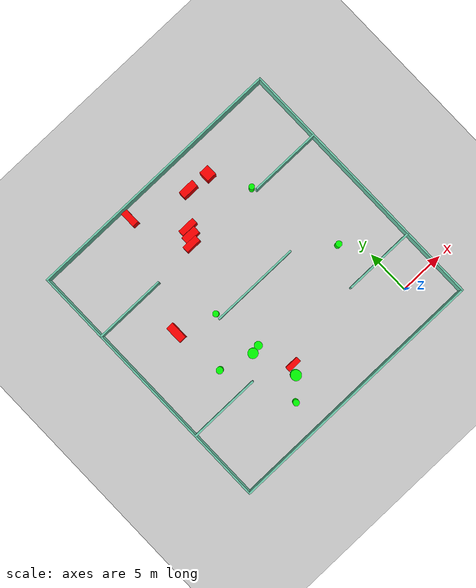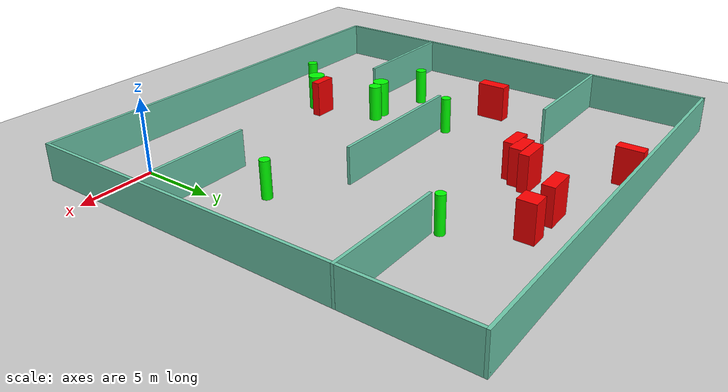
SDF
<sdf version="1.7">
 <world name="default">
  <light name="sun" type="directional">
   <pose>0 0 10 0 -0 0</pose>
   <diffuse>0.8 0.8 0.8 1</diffuse>
   <specular>0.2 0.2 0.2 1</specular>
   <attenuation>
    <range>1000</range>
    <constant>0.9</constant>
    <linear>0.01</linear>
    <quadratic>0.001</quadratic>
   </attenuation>
   <direction>-0.5 0.1 -0.9</direction>
   <spot><inner_angle>0</inner_angle><outer_angle>0</outer_angle><falloff>0</falloff></spot>
  </light>
  <model name="ground_plane">
   <static>1</static>
   <link name="link">
    <collision name="collision">
     <geometry><plane><normal>0 0 1</normal><size>100 100</size></plane></geometry>
     <surface>
      <contact><collide_bitmask>65535</collide_bitmask></contact>
      <friction><ode><mu>100</mu><mu2>50</mu2></ode></friction>
     </surface>
    </collision>
    <visual name="visual">
     <cast_shadows>0</cast_shadows>
     <geometry><plane><normal>0 0 1</normal><size>100 100</size></plane></geometry>
     <material>
      <script><uri>file://media/materials/scripts/gazebo.material</uri><name>Gazebo/Grey</name></script>
     </material>
    </visual>
   </link>
  </model>
  <gravity>0 0 -9.8</gravity>
  <magnetic_field>6e-06 2.3e-05 -4.2e-05</magnetic_field>
  <atmosphere type="adiabatic"/>
  <physics type="ode">
   <max_step_size>0.001</max_step_size>
   <real_time_factor>1</real_time_factor>
   <real_time_update_rate>1000</real_time_update_rate>
  </physics>
  <scene><ambient>0.4 0.4 0.4 1</ambient><background>0.7 0.7 0.7 1</background><shadows>1</shadows></scene>
  <spherical_coordinates>
   <surface_model>EARTH_WGS84</surface_model>
   <latitude_deg>0</latitude_deg>
   <longitude_deg>0</longitude_deg>
   <elevation>0</elevation>
   <heading_deg>0</heading_deg>
  </spherical_coordinates>
  <model name="my_base_walls">
   <link name="Wall_10">
    <collision name="Wall_10_Collision">
     <geometry><box><size>8.2 0.2 2.5</size></box></geometry>
     <pose>0 0 1.25 0 -0 0</pose>
    </collision>
    <visual name="Wall_10_Visual">
     <pose>0 0 1.25 0 -0 0</pose>
     <geometry><box><size>8.2 0.2 2.5</size></box></geometry>
     <material>
      <script><uri>file://media/materials/scripts/gazebo.material</uri><name>Gazebo/Grey</name></script>
      <ambient>0.435294 0.796078 0.67451 1</ambient>
     </material>
     <meta><layer>0</layer></meta>
    </visual>
    <pose>-11 -7 0 0 -0 0</pose>
   </link>
   <link name="Wall_12">
    <collision name="Wall_12_Collision">
     <geometry><box><size>8.2 0.2 2.5</size></box></geometry>
     <pose>0 0 1.25 0 -0 0</pose>
    </collision>
    <visual name="Wall_12_Visual">
     <pose>0 0 1.25 0 -0 0</pose>
     <geometry><box><size>8.2 0.2 2.5</size></box></geometry>
     <material>
      <script><uri>file://media/materials/scripts/gazebo.material</uri><name>Gazebo/Grey</name></script>
      <ambient>0.435294 0.796078 0.67451 1</ambient>
     </material>
     <meta><layer>0</layer></meta>
    </visual>
    <pose>-11 7 0 0 -0 0</pose>
   </link>
   <link name="Wall_14">
    <collision name="Wall_14_Collision">
     <geometry><box><size>8.2 0.2 2.5</size></box></geometry>
     <pose>0 0 1.25 0 -0 0</pose>
    </collision>
    <visual name="Wall_14_Visual">
     <pose>0 0 1.25 0 -0 0</pose>
     <geometry><box><size>8.2 0.2 2.5</size></box></geometry>
     <material>
      <script><uri>file://media/materials/scripts/gazebo.material</uri><name>Gazebo/Grey</name></script>
      <ambient>0.435294 0.796078 0.67451 1</ambient>
     </material>
     <meta><layer>0</layer></meta>
    </visual>
    <pose>11 7 0 0 -0 3.14159</pose>
   </link>
   <link name="Wall_16">
    <collision name="Wall_16_Collision">
     <geometry><box><size>10.2 0.2 2.5</size></box></geometry>
     <pose>0 0 1.25 0 -0 0</pose>
    </collision>
    <visual name="Wall_16_Visual">
     <pose>0 0 1.25 0 -0 0</pose>
     <geometry><box><size>10.2 0.2 2.5</size></box></geometry>
     <material>
      <script><uri>file://media/materials/scripts/gazebo.material</uri><name>Gazebo/Grey</name></script>
      <ambient>0.435294 0.796078 0.67451 1</ambient>
     </material>
     <meta><layer>0</layer></meta>
    </visual>
    <pose>0 0 0 0 -0 3.14159</pose>
   </link>
   <link name="Wall_2">
    <collision name="Wall_2_Collision">
     <geometry><box><size>30.2 0.2 2.5</size></box></geometry>
     <pose>0 0 1.25 0 -0 0</pose>
    </collision>
    <visual name="Wall_2_Visual">
     <pose>0 0 1.25 0 -0 0</pose>
     <geometry><box><size>30.2 0.2 2.5</size></box></geometry>
     <material>
      <script><uri>file://media/materials/scripts/gazebo.material</uri><name>Gazebo/Grey</name></script>
      <ambient>0.435294 0.796078 0.67451 1</ambient>
     </material>
     <meta><layer>0</layer></meta>
    </visual>
    <pose>0 -15 0 0 -0 3.14159</pose>
   </link>
   <link name="Wall_3">
    <collision name="Wall_3_Collision">
     <geometry><box><size>30.2 0.2 2.5</size></box></geometry>
     <pose>0 0 1.25 0 -0 0</pose>
    </collision>
    <visual name="Wall_3_Visual">
     <pose>0 0 1.25 0 -0 0</pose>
     <geometry><box><size>30.2 0.2 2.5</size></box></geometry>
     <material>
      <script><uri>file://media/materials/scripts/gazebo.material</uri><name>Gazebo/Grey</name></script>
      <ambient>0.435294 0.796078 0.67451 1</ambient>
     </material>
     <meta><layer>0</layer></meta>
    </visual>
    <pose>-15 0 0 0 -0 1.5708</pose>
   </link>
   <link name="Wall_4">
    <collision name="Wall_4_Collision">
     <geometry><box><size>30.2 0.2 2.5</size></box></geometry>
     <pose>0 0 1.25 0 -0 0</pose>
    </collision>
    <visual name="Wall_4_Visual">
     <pose>0 0 1.25 0 -0 0</pose>
     <geometry><box><size>30.2 0.2 2.5</size></box></geometry>
     <material>
      <script><uri>file://media/materials/scripts/gazebo.material</uri><name>Gazebo/Grey</name></script>
      <ambient>0.435294 0.796078 0.67451 1</ambient>
     </material>
     <meta><layer>0</layer></meta>
    </visual>
    <pose>0 15 0 0 -0 0</pose>
   </link>
   <link name="Wall_6">
    <collision name="Wall_6_Collision">
     <geometry><box><size>30.2 0.2 2.5</size></box></geometry>
     <pose>0 0 1.25 0 -0 0</pose>
    </collision>
    <visual name="Wall_6_Visual">
     <pose>0 0 1.25 0 -0 0</pose>
     <geometry><box><size>30.2 0.2 2.5</size></box></geometry>
     <material>
      <script><uri>file://media/materials/scripts/gazebo.material</uri><name>Gazebo/Grey</name></script>
      <ambient>0.435294 0.796078 0.67451 1</ambient>
     </material>
     <meta><layer>0</layer></meta>
    </visual>
    <pose>15 0 0 0 -0 1.5708</pose>
   </link>
   <link name="Wall_8">
    <collision name="Wall_8_Collision">
     <geometry><box><size>8.2 0.2 2.5</size></box></geometry>
     <pose>0 0 1.25 0 -0 0</pose>
    </collision>
    <visual name="Wall_8_Visual">
     <pose>0 0 1.25 0 -0 0</pose>
     <geometry><box><size>8.2 0.2 2.5</size></box></geometry>
     <material>
      <script><uri>file://media/materials/scripts/gazebo.material</uri><name>Gazebo/Grey</name></script>
      <ambient>0.435294 0.796078 0.67451 1</ambient>
     </material>
     <meta><layer>0</layer></meta>
    </visual>
    <pose>11 -7 0 0 -0 3.14159</pose>
   </link>
   <static>1</static>
   <pose>-11 11 0 0 -0 0</pose>
  </model>
  <model name="cylinder1">
   <static>1</static>
   <link name="link">
    <inertial>
     <mass>1</mass>
     <inertia><ixx>0.5</ixx><ixy>0</ixy><ixz>0</ixz><iyy>0.5</iyy><iyz>0</iyz><izz>1</izz></inertia>
    </inertial>
    <collision name="collision">
     <geometry><cylinder><radius>0.3397116907301123</radius><length>2.5</length></cylinder></geometry>
    </collision>
    <visual name="visual">
     <geometry><cylinder><radius>0.3397116907301123</radius><length>2.5</length></cylinder></geometry>
     <material>
      <ambient>0 1 0 1</ambient>
      <diffuse>0 1 0 1</diffuse>
      <specular>0.1 0.1 0.1 1</specular>
      <emissive>0 0 0 0</emissive>
     </material>
    </visual>
   </link>
   <pose>-1.8748617431936765 8.105519158718351 1.25 0 0 0</pose>
  </model>
  <model name="cylinder2">
   <static>1</static>
   <link name="link">
    <inertial>
     <mass>1</mass>
     <inertia><ixx>0.5</ixx><ixy>0</ixy><ixz>0</ixz><iyy>0.5</iyy><iyz>0</iyz><izz>1</izz></inertia>
    </inertial>
    <collision name="collision">
     <geometry><cylinder><radius>0.37778992971654735</radius><length>2.5</length></cylinder></geometry>
    </collision>
    <visual name="visual">
     <geometry><cylinder><radius>0.37778992971654735</radius><length>2.5</length></cylinder></geometry>
     <material>
      <ambient>0 1 0 1</ambient>
      <diffuse>0 1 0 1</diffuse>
      <specular>0.1 0.1 0.1 1</specular>
      <emissive>0 0 0 0</emissive>
     </material>
    </visual>
   </link>
   <pose>-19.600255146000215 7.153995744462248 1.25 0 0 0</pose>
  </model>
  <model name="cylinder3">
   <static>1</static>
   <link name="link">
    <inertial>
     <mass>1</mass>
     <inertia><ixx>0.5</ixx><ixy>0</ixy><ixz>0</ixz><iyy>0.5</iyy><iyz>0</iyz><izz>1</izz></inertia>
    </inertial>
    <collision name="collision">
     <geometry><cylinder><radius>0.5802337171302918</radius><length>2.5</length></cylinder></geometry>
    </collision>
    <visual name="visual">
     <geometry><cylinder><radius>0.5802337171302918</radius><length>2.5</length></cylinder></geometry>
     <material>
      <ambient>0 1 0 1</ambient>
      <diffuse>0 1 0 1</diffuse>
      <specular>0.1 0.1 0.1 1</specular>
      <emissive>0 0 0 0</emissive>
     </material>
    </visual>
   </link>
   <pose>-14.305955641765877 1.4197696957902437 1.25 0 0 0</pose>
  </model>
  <model name="cylinder4">
   <static>1</static>
   <link name="link">
    <inertial>
     <mass>1</mass>
     <inertia><ixx>0.5</ixx><ixy>0</ixy><ixz>0</ixz><iyy>0.5</iyy><iyz>0</iyz><izz>1</izz></inertia>
    </inertial>
    <collision name="collision">
     <geometry><cylinder><radius>0.3474814038568903</radius><length>2.5</length></cylinder></geometry>
    </collision>
    <visual name="visual">
     <geometry><cylinder><radius>0.3474814038568903</radius><length>2.5</length></cylinder></geometry>
     <material>
      <ambient>0 1 0 1</ambient>
      <diffuse>0 1 0 1</diffuse>
      <specular>0.1 0.1 0.1 1</specular>
      <emissive>0 0 0 0</emissive>
     </material>
    </visual>
   </link>
   <pose>-16.225794373226744 -0.6071169532477962 1.25 0 0 0</pose>
  </model>
  <model name="cylinder5">
   <static>1</static>
   <link name="link">
    <inertial>
     <mass>1</mass>
     <inertia><ixx>0.5</ixx><ixy>0</ixy><ixz>0</ixz><iyy>0.5</iyy><iyz>0</iyz><izz>1</izz></inertia>
    </inertial>
    <collision name="collision">
     <geometry><cylinder><radius>0.5575975828323911</radius><length>2.5</length></cylinder></geometry>
    </collision>
    <visual name="visual">
     <geometry><cylinder><radius>0.5575975828323911</radius><length>2.5</length></cylinder></geometry>
     <material>
      <ambient>0 1 0 1</ambient>
      <diffuse>0 1 0 1</diffuse>
      <specular>0.1 0.1 0.1 1</specular>
      <emissive>0 0 0 0</emissive>
     </material>
    </visual>
   </link>
   <pose>-15.946992791642383 6.067356180925376 1.25 0 0 0</pose>
  </model>
  <model name="cylinder6">
   <static>1</static>
   <link name="link">
    <inertial>
     <mass>1</mass>
     <inertia><ixx>0.5</ixx><ixy>0</ixy><ixz>0</ixz><iyy>0.5</iyy><iyz>0</iyz><izz>1</izz></inertia>
    </inertial>
    <collision name="collision">
     <geometry><cylinder><radius>0.3119437830804703</radius><length>2.5</length></cylinder></geometry>
    </collision>
    <visual name="visual">
     <geometry><cylinder><radius>0.3119437830804703</radius><length>2.5</length></cylinder></geometry>
     <material>
      <ambient>0 1 0 1</ambient>
      <diffuse>0 1 0 1</diffuse>
      <specular>0.1 0.1 0.1 1</specular>
      <emissive>0 0 0 0</emissive>
     </material>
    </visual>
   </link>
   <pose>-4.280914830149774 18.50286511956796 1.25 0 0 0</pose>
  </model>
  <model name="cylinder7">
   <static>1</static>
   <link name="link">
    <inertial>
     <mass>1</mass>
     <inertia><ixx>0.5</ixx><ixy>0</ixy><ixz>0</ixz><iyy>0.5</iyy><iyz>0</iyz><izz>1</izz></inertia>
    </inertial>
    <collision name="collision">
     <geometry><cylinder><radius>0.4370396386444199</radius><length>2.5</length></cylinder></geometry>
    </collision>
    <visual name="visual">
     <geometry><cylinder><radius>0.4370396386444199</radius><length>2.5</length></cylinder></geometry>
     <material>
      <ambient>0 1 0 1</ambient>
      <diffuse>0 1 0 1</diffuse>
      <specular>0.1 0.1 0.1 1</specular>
      <emissive>0 0 0 0</emissive>
     </material>
    </visual>
   </link>
   <pose>-14.995621003717936 6.275036851747817 1.25 0 0 0</pose>
  </model>
  <model name="cylinder8">
   <static>1</static>
   <link name="link">
    <inertial>
     <mass>1</mass>
     <inertia><ixx>0.5</ixx><ixy>0</ixy><ixz>0</ixz><iyy>0.5</iyy><iyz>0</iyz><izz>1</izz></inertia>
    </inertial>
    <collision name="collision">
     <geometry><cylinder><radius>0.3297206653874913</radius><length>2.5</length></cylinder></geometry>
    </collision>
    <visual name="visual">
     <geometry><cylinder><radius>0.3297206653874913</radius><length>2.5</length></cylinder></geometry>
     <material>
      <ambient>0 1 0 1</ambient>
      <diffuse>0 1 0 1</diffuse>
      <specular>0.1 0.1 0.1 1</specular>
      <emissive>0 0 0 0</emissive>
     </material>
    </visual>
   </link>
   <pose>-15.921515039790748 11.618728193821116 1.25 0 0 0</pose>
  </model>
  <model name="box1">
   <static>1</static>
   <link name="link">
    <inertial>
     <mass>1</mass>
     <inertia><ixx>0.083</ixx><ixy>0</ixy><ixz>0</ixz><iyy>0.083</iyy><iyz>0</iyz><izz>0.083</izz></inertia>
    </inertial>
    <collision name="collision">
     <geometry><box><size>1.7957733374133906 0.7147343324379811 2.5</size></box></geometry>
    </collision>
    <visual name="visual">
     <geometry><box><size>1.7957733374133906 0.7147343324379811 2.5</size></box></geometry>
     <material>
      <ambient>1 0 0 1</ambient>
      <diffuse>1 0 0 1</diffuse>
      <specular>0.1 0.1 0.1 1</specular>
      <emissive>0 0 0 0</emissive>
     </material>
    </visual>
    <sensor name="my_contact" type="contact">
     <contact><collision>box_collision</collision><topic>__default_topic__</topic></contact>
    </sensor>
   </link>
   <pose>-12.794954685847687 18.51533595456912 1.25 0 0 0</pose>
  </model>
  <model name="box2">
   <static>1</static>
   <link name="link">
    <inertial>
     <mass>1</mass>
     <inertia><ixx>0.083</ixx><ixy>0</ixy><ixz>0</ixz><iyy>0.083</iyy><iyz>0</iyz><izz>0.083</izz></inertia>
    </inertial>
    <collision name="collision">
     <geometry><box><size>1.1306104432938553 1.2135040693147605 2.5</size></box></geometry>
    </collision>
    <visual name="visual">
     <geometry><box><size>1.1306104432938553 1.2135040693147605 2.5</size></box></geometry>
     <material>
      <ambient>1 0 0 1</ambient>
      <diffuse>1 0 0 1</diffuse>
      <specular>0.1 0.1 0.1 1</specular>
      <emissive>0 0 0 0</emissive>
     </material>
    </visual>
    <sensor name="my_contact" type="contact">
     <contact><collision>box_collision</collision><topic>__default_topic__</topic></contact>
    </sensor>
   </link>
   <pose>-6.599826591904948 22.61978024119901 1.25 0 0 0</pose>
  </model>
  <model name="box3">
   <static>1</static>
   <link name="link">
    <inertial>
     <mass>1</mass>
     <inertia><ixx>0.083</ixx><ixy>0</ixy><ixz>0</ixz><iyy>0.083</iyy><iyz>0</iyz><izz>0.083</izz></inertia>
    </inertial>
    <collision name="collision">
     <geometry><box><size>1.7440647707191121 0.8282929228219988 2.5</size></box></geometry>
    </collision>
    <visual name="visual">
     <geometry><box><size>1.7440647707191121 0.8282929228219988 2.5</size></box></geometry>
     <material>
      <ambient>1 0 0 1</ambient>
      <diffuse>1 0 0 1</diffuse>
      <specular>0.1 0.1 0.1 1</specular>
      <emissive>0 0 0 0</emissive>
     </material>
    </visual>
    <sensor name="my_contact" type="contact">
     <contact><collision>box_collision</collision><topic>__default_topic__</topic></contact>
    </sensor>
   </link>
   <pose>-12.237425684241593 19.231318569819415 1.25 0 0 0</pose>
  </model>
  <model name="box4">
   <static>1</static>
   <link name="link">
    <inertial>
     <mass>1</mass>
     <inertia><ixx>0.083</ixx><ixy>0</ixy><ixz>0</ixz><iyy>0.083</iyy><iyz>0</iyz><izz>0.083</izz></inertia>
    </inertial>
    <collision name="collision">
     <geometry><box><size>0.8516024386166423 1.987085362006588 2.5</size></box></geometry>
    </collision>
    <visual name="visual">
     <geometry><box><size>0.8516024386166423 1.987085362006588 2.5</size></box></geometry>
     <material>
      <ambient>1 0 0 1</ambient>
      <diffuse>1 0 0 1</diffuse>
      <specular>0.1 0.1 0.1 1</specular>
      <emissive>0 0 0 0</emissive>
     </material>
    </visual>
    <sensor name="my_contact" type="contact">
     <contact><collision>box_collision</collision><topic>__default_topic__</topic></contact>
    </sensor>
   </link>
   <pose>-20.176713444741218 13.007505629116864 1.25 0 0 0</pose>
  </model>
  <model name="box5">
   <static>1</static>
   <link name="link">
    <inertial>
     <mass>1</mass>
     <inertia><ixx>0.083</ixx><ixy>0</ixy><ixz>0</ixz><iyy>0.083</iyy><iyz>0</iyz><izz>0.083</izz></inertia>
    </inertial>
    <collision name="collision">
     <geometry><box><size>1.84923707950158 0.8182926130385011 2.5</size></box></geometry>
    </collision>
    <visual name="visual">
     <geometry><box><size>1.84923707950158 0.8182926130385011 2.5</size></box></geometry>
     <material>
      <ambient>1 0 0 1</ambient>
      <diffuse>1 0 0 1</diffuse>
      <specular>0.1 0.1 0.1 1</specular>
      <emissive>0 0 0 0</emissive>
     </material>
    </visual>
    <sensor name="my_contact" type="contact">
     <contact><collision>box_collision</collision><topic>__default_topic__</topic></contact>
    </sensor>
   </link>
   <pose>-9.157994981500039 22.80650570635398 1.25 0 0 0</pose>
  </model>
  <model name="box6">
   <static>1</static>
   <link name="link">
    <inertial>
     <mass>1</mass>
     <inertia><ixx>0.083</ixx><ixy>0</ixy><ixz>0</ixz><iyy>0.083</iyy><iyz>0</iyz><izz>0.083</izz></inertia>
    </inertial>
    <collision name="collision">
     <geometry><box><size>1.9458232082772304 0.6757772588984592 2.5</size></box></geometry>
    </collision>
    <visual name="visual">
     <geometry><box><size>1.9458232082772304 0.6757772588984592 2.5</size></box></geometry>
     <material>
      <ambient>1 0 0 1</ambient>
      <diffuse>1 0 0 1</diffuse>
      <specular>0.1 0.1 0.1 1</specular>
      <emissive>0 0 0 0</emissive>
     </material>
    </visual>
    <sensor name="my_contact" type="contact">
     <contact><collision>box_collision</collision><topic>__default_topic__</topic></contact>
    </sensor>
   </link>
   <pose>-11.881602934927475 20.017489924603673 1.25 0 0 0</pose>
  </model>
  <model name="box7">
   <static>1</static>
   <link name="link">
    <inertial>
     <mass>1</mass>
     <inertia><ixx>0.083</ixx><ixy>0</ixy><ixz>0</ixz><iyy>0.083</iyy><iyz>0</iyz><izz>0.083</izz></inertia>
    </inertial>
    <collision name="collision">
     <geometry><box><size>0.7378355763544622 1.7354951726836279 2.5</size></box></geometry>
    </collision>
    <visual name="visual">
     <geometry><box><size>0.7378355763544622 1.7354951726836279 2.5</size></box></geometry>
     <material>
      <ambient>1 0 0 1</ambient>
      <diffuse>1 0 0 1</diffuse>
      <specular>0.1 0.1 0.1 1</specular>
      <emissive>0 0 0 0</emissive>
     </material>
    </visual>
    <sensor name="my_contact" type="contact">
     <contact><collision>box_collision</collision><topic>__default_topic__</topic></contact>
    </sensor>
   </link>
   <pose>-15.539335663208341 24.77680628403907 1.25 0 0 0</pose>
  </model>
  <model name="box8">
   <static>1</static>
   <link name="link">
    <inertial>
     <mass>1</mass>
     <inertia><ixx>0.083</ixx><ixy>0</ixy><ixz>0</ixz><iyy>0.083</iyy><iyz>0</iyz><izz>0.083</izz></inertia>
    </inertial>
    <collision name="collision">
     <geometry><box><size>1.5621658545529356 0.5797416536273857 2.5</size></box></geometry>
    </collision>
    <visual name="visual">
     <geometry><box><size>1.5621658545529356 0.5797416536273857 2.5</size></box></geometry>
     <material>
      <ambient>1 0 0 1</ambient>
      <diffuse>1 0 0 1</diffuse>
      <specular>0.1 0.1 0.1 1</specular>
      <emissive>0 0 0 0</emissive>
     </material>
    </visual>
    <sensor name="my_contact" type="contact">
     <contact><collision>box_collision</collision><topic>__default_topic__</topic></contact>
    </sensor>
   </link>
   <pose>-13.753137160013793 2.4145120984309933 1.25 0 0 0</pose>
  </model>
 </world>
</sdf>
